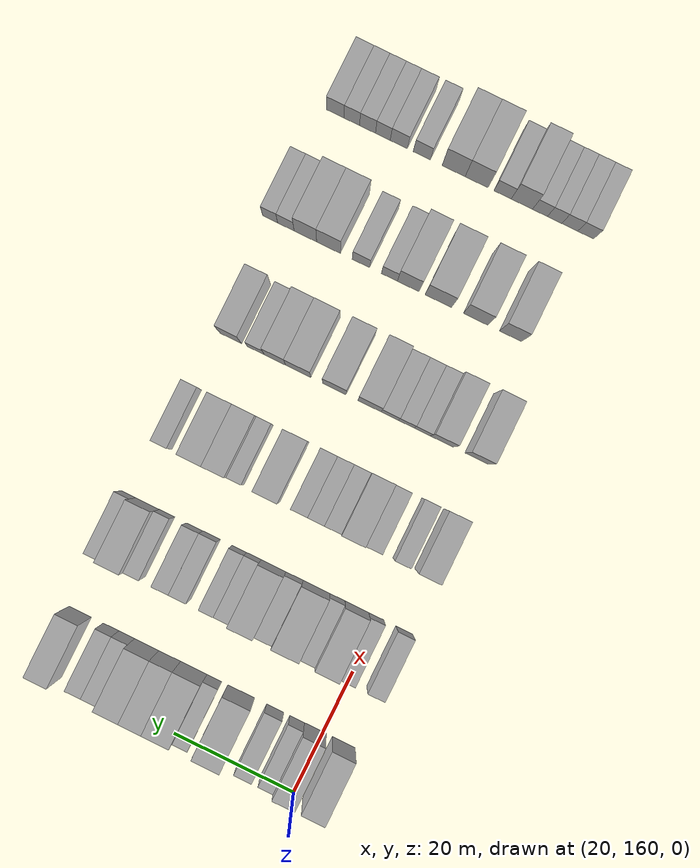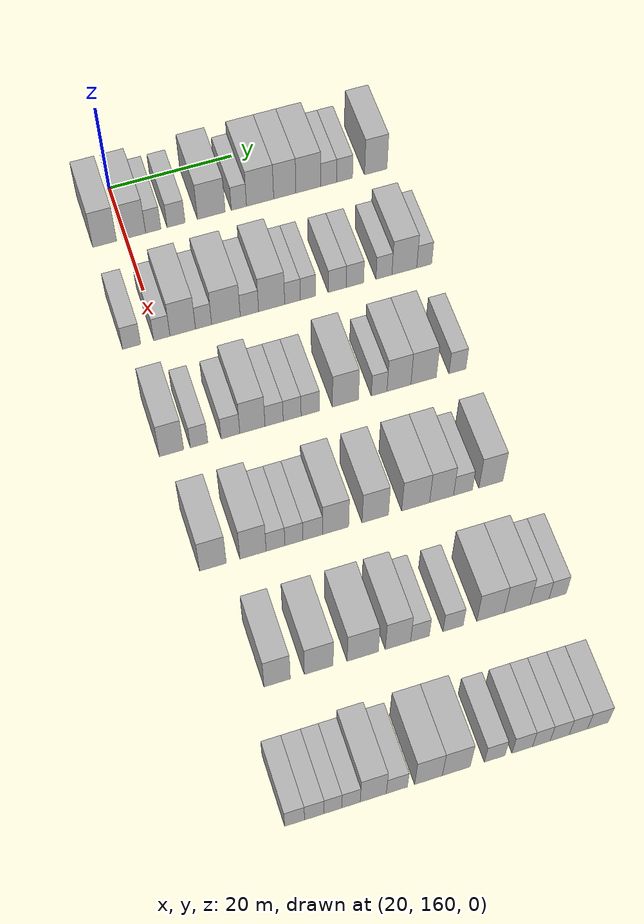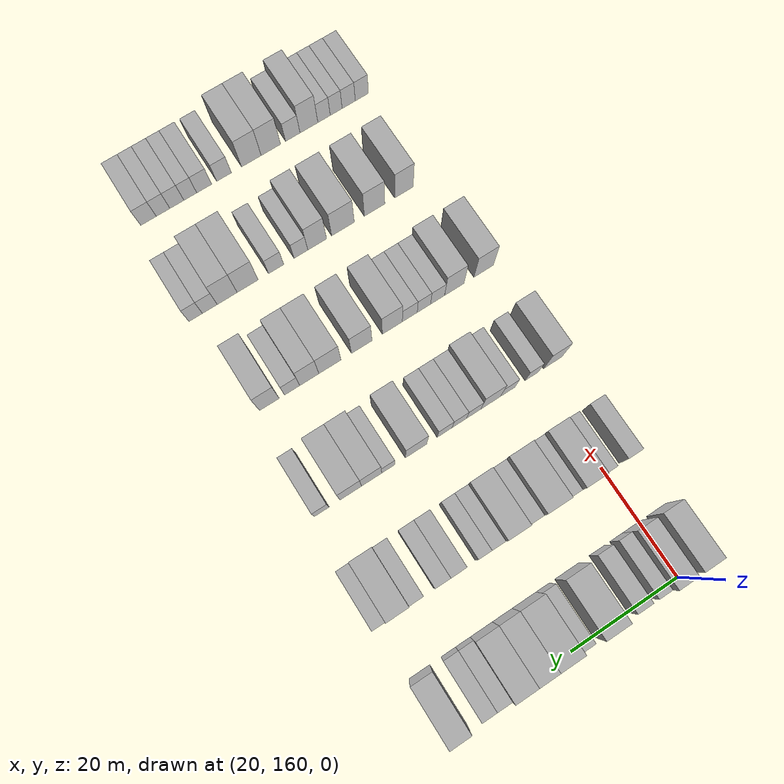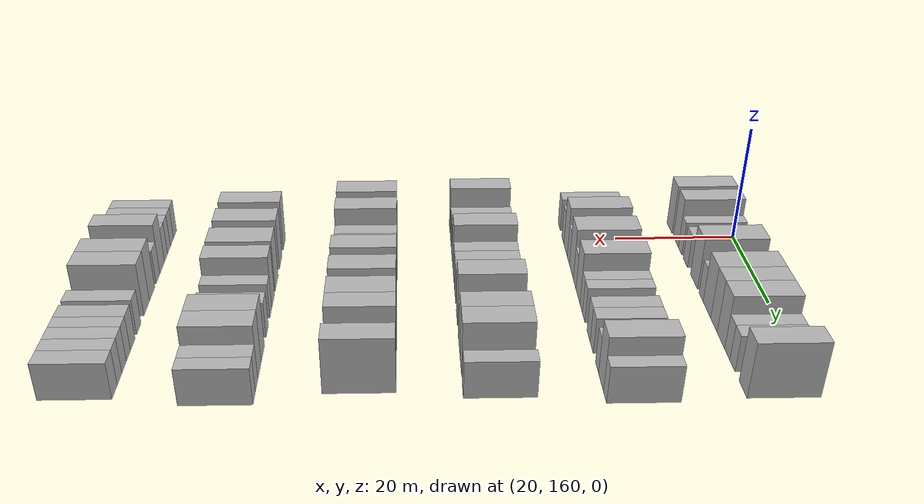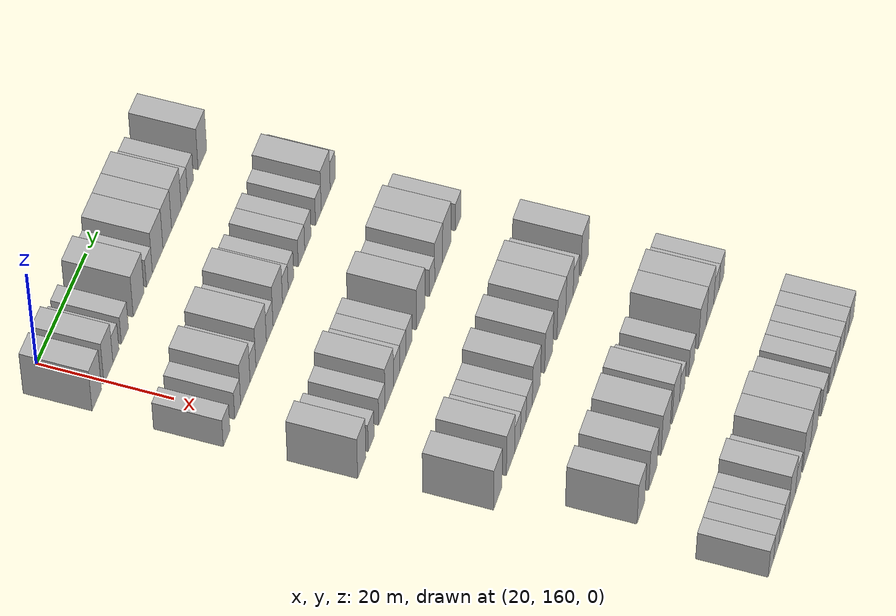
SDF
<sdf version="1.6">
 <world name="default">
  <model name="building_115">
   <static>1</static>
   <pose>25.0000 156.6173 0 0.000000 0.000000 0.000000</pose>
   <link name="link">
    <pose>0 0 4.50 0 0 0</pose>
    <collision name="collision"><geometry><box><size>10.0000 3.8027 9.0000</size></box></geometry></collision>
    <visual name="visual">
     <cast_shadows>0</cast_shadows>
     <geometry><box><size>10.0000 3.8027 9.0000</size></box></geometry>
     <material>
      <script>
       <uri>model://HANNAS_wall/materials/scripts</uri>
       <uri>model://HANNAS_wall/materials/textures</uri>
       <name>vrc/HANNAS_wall</name>
      </script>
     </material>
    </visual>
   </link>
  </model>
  <model name="building_116">
   <static>1</static>
   <pose>25.0000 161.3417 0 0.000000 0.000000 0.000000</pose>
   <link name="link">
    <pose>0 0 4.50 0 0 0</pose>
    <collision name="collision"><geometry><box><size>10.0000 3.6462 9.0000</size></box></geometry></collision>
    <visual name="visual">
     <cast_shadows>0</cast_shadows>
     <geometry><box><size>10.0000 3.6462 9.0000</size></box></geometry>
     <material>
      <script>
       <uri>model://HANNAS_wall/materials/scripts</uri>
       <uri>model://HANNAS_wall/materials/textures</uri>
       <name>vrc/HANNAS_wall</name>
      </script>
     </material>
    </visual>
   </link>
  </model>
  <model name="building_117">
   <static>1</static>
   <pose>25.0000 164.3866 0 0.000000 0.000000 0.000000</pose>
   <link name="link">
    <pose>0 0 3.00 0 0 0</pose>
    <collision name="collision"><geometry><box><size>10.0000 2.4435 6.0000</size></box></geometry></collision>
    <visual name="visual">
     <cast_shadows>0</cast_shadows>
     <geometry><box><size>10.0000 2.4435 6.0000</size></box></geometry>
     <material>
      <script>
       <uri>model://HANNAS_wall/materials/scripts</uri>
       <uri>model://HANNAS_wall/materials/textures</uri>
       <name>vrc/HANNAS_wall</name>
      </script>
     </material>
    </visual>
   </link>
  </model>
  <model name="building_118">
   <static>1</static>
   <pose>25.0000 168.0514 0 0.000000 0.000000 0.000000</pose>
   <link name="link">
    <pose>0 0 3.00 0 0 0</pose>
    <collision name="collision"><geometry><box><size>10.0000 2.8862 6.0000</size></box></geometry></collision>
    <visual name="visual">
     <cast_shadows>0</cast_shadows>
     <geometry><box><size>10.0000 2.8862 6.0000</size></box></geometry>
     <material>
      <script>
       <uri>model://HANNAS_wall/materials/scripts</uri>
       <uri>model://HANNAS_wall/materials/textures</uri>
       <name>vrc/HANNAS_wall</name>
      </script>
     </material>
    </visual>
   </link>
  </model>
  <model name="building_119">
   <static>1</static>
   <pose>25.0000 173.7410 0 0.000000 0.000000 0.000000</pose>
   <link name="link">
    <pose>0 0 4.50 0 0 0</pose>
    <collision name="collision"><geometry><box><size>10.0000 4.4930 9.0000</size></box></geometry></collision>
    <visual name="visual">
     <cast_shadows>0</cast_shadows>
     <geometry><box><size>10.0000 4.4930 9.0000</size></box></geometry>
     <material>
      <script>
       <uri>model://HANNAS_wall/materials/scripts</uri>
       <uri>model://HANNAS_wall/materials/textures</uri>
       <name>vrc/HANNAS_wall</name>
      </script>
     </material>
    </visual>
   </link>
  </model>
  <model name="building_120">
   <static>1</static>
   <pose>25.0000 178.2228 0 0.000000 0.000000 0.000000</pose>
   <link name="link">
    <pose>0 0 3.00 0 0 0</pose>
    <collision name="collision"><geometry><box><size>10.0000 2.4706 6.0000</size></box></geometry></collision>
    <visual name="visual">
     <cast_shadows>0</cast_shadows>
     <geometry><box><size>10.0000 2.4706 6.0000</size></box></geometry>
     <material>
      <script>
       <uri>model://HANNAS_wall/materials/scripts</uri>
       <uri>model://HANNAS_wall/materials/textures</uri>
       <name>vrc/HANNAS_wall</name>
      </script>
     </material>
    </visual>
   </link>
  </model>
  <model name="building_121">
   <static>1</static>
   <pose>25.0000 181.6790 0 0.000000 0.000000 0.000000</pose>
   <link name="link">
    <pose>0 0 4.50 0 0 0</pose>
    <collision name="collision"><geometry><box><size>10.0000 4.4417 9.0000</size></box></geometry></collision>
    <visual name="visual">
     <cast_shadows>0</cast_shadows>
     <geometry><box><size>10.0000 4.4417 9.0000</size></box></geometry>
     <material>
      <script>
       <uri>model://HANNAS_wall/materials/scripts</uri>
       <uri>model://HANNAS_wall/materials/textures</uri>
       <name>vrc/HANNAS_wall</name>
      </script>
     </material>
    </visual>
   </link>
  </model>
  <model name="building_122">
   <static>1</static>
   <pose>25.0000 185.7225 0 0.000000 0.000000 0.000000</pose>
   <link name="link">
    <pose>0 0 4.50 0 0 0</pose>
    <collision name="collision"><geometry><box><size>10.0000 3.6453 9.0000</size></box></geometry></collision>
    <visual name="visual">
     <cast_shadows>0</cast_shadows>
     <geometry><box><size>10.0000 3.6453 9.0000</size></box></geometry>
     <material>
      <script>
       <uri>model://HANNAS_wall/materials/scripts</uri>
       <uri>model://HANNAS_wall/materials/textures</uri>
       <name>vrc/HANNAS_wall</name>
      </script>
     </material>
    </visual>
   </link>
  </model>
  <model name="building_123">
   <static>1</static>
   <pose>25.0000 189.5799 0 0.000000 0.000000 0.000000</pose>
   <link name="link">
    <pose>0 0 4.50 0 0 0</pose>
    <collision name="collision"><geometry><box><size>10.0000 4.0696 9.0000</size></box></geometry></collision>
    <visual name="visual">
     <cast_shadows>0</cast_shadows>
     <geometry><box><size>10.0000 4.0696 9.0000</size></box></geometry>
     <material>
      <script>
       <uri>model://HANNAS_wall/materials/scripts</uri>
       <uri>model://HANNAS_wall/materials/textures</uri>
       <name>vrc/HANNAS_wall</name>
      </script>
     </material>
    </visual>
   </link>
  </model>
  <model name="building_124">
   <static>1</static>
   <pose>25.0000 192.9331 0 0.000000 0.000000 0.000000</pose>
   <link name="link">
    <pose>0 0 3.00 0 0 0</pose>
    <collision name="collision"><geometry><box><size>10.0000 2.6368 6.0000</size></box></geometry></collision>
    <visual name="visual">
     <cast_shadows>0</cast_shadows>
     <geometry><box><size>10.0000 2.6368 6.0000</size></box></geometry>
     <material>
      <script>
       <uri>model://HANNAS_wall/materials/scripts</uri>
       <uri>model://HANNAS_wall/materials/textures</uri>
       <name>vrc/HANNAS_wall</name>
      </script>
     </material>
    </visual>
   </link>
  </model>
  <model name="building_125">
   <static>1</static>
   <pose>25.0000 195.5694 0 0.000000 0.000000 0.000000</pose>
   <link name="link">
    <pose>0 0 3.00 0 0 0</pose>
    <collision name="collision"><geometry><box><size>10.0000 2.6356 6.0000</size></box></geometry></collision>
    <visual name="visual">
     <cast_shadows>0</cast_shadows>
     <geometry><box><size>10.0000 2.6356 6.0000</size></box></geometry>
     <material>
      <script>
       <uri>model://HANNAS_wall/materials/scripts</uri>
       <uri>model://HANNAS_wall/materials/textures</uri>
       <name>vrc/HANNAS_wall</name>
      </script>
     </material>
    </visual>
   </link>
  </model>
  <model name="building_126">
   <static>1</static>
   <pose>25.0000 200.7594 0 0.000000 0.000000 0.000000</pose>
   <link name="link">
    <pose>0 0 4.50 0 0 0</pose>
    <collision name="collision"><geometry><box><size>10.0000 3.7444 9.0000</size></box></geometry></collision>
    <visual name="visual">
     <cast_shadows>0</cast_shadows>
     <geometry><box><size>10.0000 3.7444 9.0000</size></box></geometry>
     <material>
      <script>
       <uri>model://HANNAS_wall/materials/scripts</uri>
       <uri>model://HANNAS_wall/materials/textures</uri>
       <name>vrc/HANNAS_wall</name>
      </script>
     </material>
    </visual>
   </link>
  </model>
  <model name="building_281">
   <static>1</static>
   <pose>44.0000 155.7806 0 0.000000 0.000000 0.000000</pose>
   <link name="link">
    <pose>0 0 3.00 0 0 0</pose>
    <collision name="collision"><geometry><box><size>10.0000 2.8152 6.0000</size></box></geometry></collision>
    <visual name="visual">
     <cast_shadows>0</cast_shadows>
     <geometry><box><size>10.0000 2.8152 6.0000</size></box></geometry>
     <material>
      <script>
       <uri>model://HANNAS_wall/materials/scripts</uri>
       <uri>model://HANNAS_wall/materials/textures</uri>
       <name>vrc/HANNAS_wall</name>
      </script>
     </material>
    </visual>
   </link>
  </model>
  <model name="building_282">
   <static>1</static>
   <pose>44.0000 160.4597 0 0.000000 0.000000 0.000000</pose>
   <link name="link">
    <pose>0 0 3.00 0 0 0</pose>
    <collision name="collision"><geometry><box><size>10.0000 2.5428 6.0000</size></box></geometry></collision>
    <visual name="visual">
     <cast_shadows>0</cast_shadows>
     <geometry><box><size>10.0000 2.5428 6.0000</size></box></geometry>
     <material>
      <script>
       <uri>model://HANNAS_wall/materials/scripts</uri>
       <uri>model://HANNAS_wall/materials/textures</uri>
       <name>vrc/HANNAS_wall</name>
      </script>
     </material>
    </visual>
   </link>
  </model>
  <model name="building_283">
   <static>1</static>
   <pose>44.0000 163.7193 0 0.000000 0.000000 0.000000</pose>
   <link name="link">
    <pose>0 0 4.50 0 0 0</pose>
    <collision name="collision"><geometry><box><size>10.0000 3.9764 9.0000</size></box></geometry></collision>
    <visual name="visual">
     <cast_shadows>0</cast_shadows>
     <geometry><box><size>10.0000 3.9764 9.0000</size></box></geometry>
     <material>
      <script>
       <uri>model://HANNAS_wall/materials/scripts</uri>
       <uri>model://HANNAS_wall/materials/textures</uri>
       <name>vrc/HANNAS_wall</name>
      </script>
     </material>
    </visual>
   </link>
  </model>
  <model name="building_284">
   <static>1</static>
   <pose>44.0000 166.9641 0 0.000000 0.000000 0.000000</pose>
   <link name="link">
    <pose>0 0 3.00 0 0 0</pose>
    <collision name="collision"><geometry><box><size>10.0000 2.5133 6.0000</size></box></geometry></collision>
    <visual name="visual">
     <cast_shadows>0</cast_shadows>
     <geometry><box><size>10.0000 2.5133 6.0000</size></box></geometry>
     <material>
      <script>
       <uri>model://HANNAS_wall/materials/scripts</uri>
       <uri>model://HANNAS_wall/materials/textures</uri>
       <name>vrc/HANNAS_wall</name>
      </script>
     </material>
    </visual>
   </link>
  </model>
  <model name="building_285">
   <static>1</static>
   <pose>44.0000 170.4692 0 0.000000 0.000000 0.000000</pose>
   <link name="link">
    <pose>0 0 4.50 0 0 0</pose>
    <collision name="collision"><geometry><box><size>10.0000 4.4968 9.0000</size></box></geometry></collision>
    <visual name="visual">
     <cast_shadows>0</cast_shadows>
     <geometry><box><size>10.0000 4.4968 9.0000</size></box></geometry>
     <material>
      <script>
       <uri>model://HANNAS_wall/materials/scripts</uri>
       <uri>model://HANNAS_wall/materials/textures</uri>
       <name>vrc/HANNAS_wall</name>
      </script>
     </material>
    </visual>
   </link>
  </model>
  <model name="building_286">
   <static>1</static>
   <pose>44.0000 174.1604 0 0.000000 0.000000 0.000000</pose>
   <link name="link">
    <pose>0 0 3.00 0 0 0</pose>
    <collision name="collision"><geometry><box><size>10.0000 2.8856 6.0000</size></box></geometry></collision>
    <visual name="visual">
     <cast_shadows>0</cast_shadows>
     <geometry><box><size>10.0000 2.8856 6.0000</size></box></geometry>
     <material>
      <script>
       <uri>model://HANNAS_wall/materials/scripts</uri>
       <uri>model://HANNAS_wall/materials/textures</uri>
       <name>vrc/HANNAS_wall</name>
      </script>
     </material>
    </visual>
   </link>
  </model>
  <model name="building_287">
   <static>1</static>
   <pose>44.0000 177.6640 0 0.000000 0.000000 0.000000</pose>
   <link name="link">
    <pose>0 0 4.50 0 0 0</pose>
    <collision name="collision"><geometry><box><size>10.0000 4.1216 9.0000</size></box></geometry></collision>
    <visual name="visual">
     <cast_shadows>0</cast_shadows>
     <geometry><box><size>10.0000 4.1216 9.0000</size></box></geometry>
     <material>
      <script>
       <uri>model://HANNAS_wall/materials/scripts</uri>
       <uri>model://HANNAS_wall/materials/textures</uri>
       <name>vrc/HANNAS_wall</name>
      </script>
     </material>
    </visual>
   </link>
  </model>
  <model name="building_288">
   <static>1</static>
   <pose>44.0000 180.9608 0 0.000000 0.000000 0.000000</pose>
   <link name="link">
    <pose>0 0 3.00 0 0 0</pose>
    <collision name="collision"><geometry><box><size>10.0000 2.4719 6.0000</size></box></geometry></collision>
    <visual name="visual">
     <cast_shadows>0</cast_shadows>
     <geometry><box><size>10.0000 2.4719 6.0000</size></box></geometry>
     <material>
      <script>
       <uri>model://HANNAS_wall/materials/scripts</uri>
       <uri>model://HANNAS_wall/materials/textures</uri>
       <name>vrc/HANNAS_wall</name>
      </script>
     </material>
    </visual>
   </link>
  </model>
  <model name="building_289">
   <static>1</static>
   <pose>44.0000 183.4170 0 0.000000 0.000000 0.000000</pose>
   <link name="link">
    <pose>0 0 3.00 0 0 0</pose>
    <collision name="collision"><geometry><box><size>10.0000 2.4405 6.0000</size></box></geometry></collision>
    <visual name="visual">
     <cast_shadows>0</cast_shadows>
     <geometry><box><size>10.0000 2.4405 6.0000</size></box></geometry>
     <material>
      <script>
       <uri>model://HANNAS_wall/materials/scripts</uri>
       <uri>model://HANNAS_wall/materials/textures</uri>
       <name>vrc/HANNAS_wall</name>
      </script>
     </material>
    </visual>
   </link>
  </model>
  <model name="building_290">
   <static>1</static>
   <pose>44.0000 188.0779 0 0.000000 0.000000 0.000000</pose>
   <link name="link">
    <pose>0 0 3.00 0 0 0</pose>
    <collision name="collision"><geometry><box><size>10.0000 2.8813 6.0000</size></box></geometry></collision>
    <visual name="visual">
     <cast_shadows>0</cast_shadows>
     <geometry><box><size>10.0000 2.8813 6.0000</size></box></geometry>
     <material>
      <script>
       <uri>model://HANNAS_wall/materials/scripts</uri>
       <uri>model://HANNAS_wall/materials/textures</uri>
       <name>vrc/HANNAS_wall</name>
      </script>
     </material>
    </visual>
   </link>
  </model>
  <model name="building_291">
   <static>1</static>
   <pose>44.0000 190.9140 0 0.000000 0.000000 0.000000</pose>
   <link name="link">
    <pose>0 0 3.00 0 0 0</pose>
    <collision name="collision"><geometry><box><size>10.0000 2.7908 6.0000</size></box></geometry></collision>
    <visual name="visual">
     <cast_shadows>0</cast_shadows>
     <geometry><box><size>10.0000 2.7908 6.0000</size></box></geometry>
     <material>
      <script>
       <uri>model://HANNAS_wall/materials/scripts</uri>
       <uri>model://HANNAS_wall/materials/textures</uri>
       <name>vrc/HANNAS_wall</name>
      </script>
     </material>
    </visual>
   </link>
  </model>
  <model name="building_292">
   <static>1</static>
   <pose>44.0000 195.5929 0 0.000000 0.000000 0.000000</pose>
   <link name="link">
    <pose>0 0 3.00 0 0 0</pose>
    <collision name="collision"><geometry><box><size>10.0000 2.5670 6.0000</size></box></geometry></collision>
    <visual name="visual">
     <cast_shadows>0</cast_shadows>
     <geometry><box><size>10.0000 2.5670 6.0000</size></box></geometry>
     <material>
      <script>
       <uri>model://HANNAS_wall/materials/scripts</uri>
       <uri>model://HANNAS_wall/materials/textures</uri>
       <name>vrc/HANNAS_wall</name>
      </script>
     </material>
    </visual>
   </link>
  </model>
  <model name="building_293">
   <static>1</static>
   <pose>44.0000 198.8872 0 0.000000 0.000000 0.000000</pose>
   <link name="link">
    <pose>0 0 4.50 0 0 0</pose>
    <collision name="collision"><geometry><box><size>10.0000 4.0216 9.0000</size></box></geometry></collision>
    <visual name="visual">
     <cast_shadows>0</cast_shadows>
     <geometry><box><size>10.0000 4.0216 9.0000</size></box></geometry>
     <material>
      <script>
       <uri>model://HANNAS_wall/materials/scripts</uri>
       <uri>model://HANNAS_wall/materials/textures</uri>
       <name>vrc/HANNAS_wall</name>
      </script>
     </material>
    </visual>
   </link>
  </model>
  <model name="building_294">
   <static>1</static>
   <pose>44.0000 202.1095 0 0.000000 0.000000 0.000000</pose>
   <link name="link">
    <pose>0 0 3.00 0 0 0</pose>
    <collision name="collision"><geometry><box><size>10.0000 2.4228 6.0000</size></box></geometry></collision>
    <visual name="visual">
     <cast_shadows>0</cast_shadows>
     <geometry><box><size>10.0000 2.4228 6.0000</size></box></geometry>
     <material>
      <script>
       <uri>model://HANNAS_wall/materials/scripts</uri>
       <uri>model://HANNAS_wall/materials/textures</uri>
       <name>vrc/HANNAS_wall</name>
      </script>
     </material>
    </visual>
   </link>
  </model>
  <model name="building_458">
   <static>1</static>
   <pose>63.0000 156.6104 0 0.000000 0.000000 0.000000</pose>
   <link name="link">
    <pose>0 0 4.50 0 0 0</pose>
    <collision name="collision"><geometry><box><size>10.0000 3.6429 9.0000</size></box></geometry></collision>
    <visual name="visual">
     <cast_shadows>0</cast_shadows>
     <geometry><box><size>10.0000 3.6429 9.0000</size></box></geometry>
     <material>
      <script>
       <uri>model://HANNAS_wall/materials/scripts</uri>
       <uri>model://HANNAS_wall/materials/textures</uri>
       <name>vrc/HANNAS_wall</name>
      </script>
     </material>
    </visual>
   </link>
  </model>
  <model name="building_459">
   <static>1</static>
   <pose>63.0000 160.7551 0 0.000000 0.000000 0.000000</pose>
   <link name="link">
    <pose>0 0 3.00 0 0 0</pose>
    <collision name="collision"><geometry><box><size>10.0000 2.6466 6.0000</size></box></geometry></collision>
    <visual name="visual">
     <cast_shadows>0</cast_shadows>
     <geometry><box><size>10.0000 2.6466 6.0000</size></box></geometry>
     <material>
      <script>
       <uri>model://HANNAS_wall/materials/scripts</uri>
       <uri>model://HANNAS_wall/materials/textures</uri>
       <name>vrc/HANNAS_wall</name>
      </script>
     </material>
    </visual>
   </link>
  </model>
  <model name="building_460">
   <static>1</static>
   <pose>63.0000 165.4972 0 0.000000 0.000000 0.000000</pose>
   <link name="link">
    <pose>0 0 3.00 0 0 0</pose>
    <collision name="collision"><geometry><box><size>10.0000 2.8376 6.0000</size></box></geometry></collision>
    <visual name="visual">
     <cast_shadows>0</cast_shadows>
     <geometry><box><size>10.0000 2.8376 6.0000</size></box></geometry>
     <material>
      <script>
       <uri>model://HANNAS_wall/materials/scripts</uri>
       <uri>model://HANNAS_wall/materials/textures</uri>
       <name>vrc/HANNAS_wall</name>
      </script>
     </material>
    </visual>
   </link>
  </model>
  <model name="building_461">
   <static>1</static>
   <pose>63.0000 168.8309 0 0.000000 0.000000 0.000000</pose>
   <link name="link">
    <pose>0 0 4.50 0 0 0</pose>
    <collision name="collision"><geometry><box><size>10.0000 3.8297 9.0000</size></box></geometry></collision>
    <visual name="visual">
     <cast_shadows>0</cast_shadows>
     <geometry><box><size>10.0000 3.8297 9.0000</size></box></geometry>
     <material>
      <script>
       <uri>model://HANNAS_wall/materials/scripts</uri>
       <uri>model://HANNAS_wall/materials/textures</uri>
       <name>vrc/HANNAS_wall</name>
      </script>
     </material>
    </visual>
   </link>
  </model>
  <model name="building_462">
   <static>1</static>
   <pose>63.0000 172.1347 0 0.000000 0.000000 0.000000</pose>
   <link name="link">
    <pose>0 0 3.00 0 0 0</pose>
    <collision name="collision"><geometry><box><size>10.0000 2.7781 6.0000</size></box></geometry></collision>
    <visual name="visual">
     <cast_shadows>0</cast_shadows>
     <geometry><box><size>10.0000 2.7781 6.0000</size></box></geometry>
     <material>
      <script>
       <uri>model://HANNAS_wall/materials/scripts</uri>
       <uri>model://HANNAS_wall/materials/textures</uri>
       <name>vrc/HANNAS_wall</name>
      </script>
     </material>
    </visual>
   </link>
  </model>
  <model name="building_463">
   <static>1</static>
   <pose>63.0000 174.8936 0 0.000000 0.000000 0.000000</pose>
   <link name="link">
    <pose>0 0 3.00 0 0 0</pose>
    <collision name="collision"><geometry><box><size>10.0000 2.7397 6.0000</size></box></geometry></collision>
    <visual name="visual">
     <cast_shadows>0</cast_shadows>
     <geometry><box><size>10.0000 2.7397 6.0000</size></box></geometry>
     <material>
      <script>
       <uri>model://HANNAS_wall/materials/scripts</uri>
       <uri>model://HANNAS_wall/materials/textures</uri>
       <name>vrc/HANNAS_wall</name>
      </script>
     </material>
    </visual>
   </link>
  </model>
  <model name="building_464">
   <static>1</static>
   <pose>63.0000 177.6654 0 0.000000 0.000000 0.000000</pose>
   <link name="link">
    <pose>0 0 3.00 0 0 0</pose>
    <collision name="collision"><geometry><box><size>10.0000 2.8038 6.0000</size></box></geometry></collision>
    <visual name="visual">
     <cast_shadows>0</cast_shadows>
     <geometry><box><size>10.0000 2.8038 6.0000</size></box></geometry>
     <material>
      <script>
       <uri>model://HANNAS_wall/materials/scripts</uri>
       <uri>model://HANNAS_wall/materials/textures</uri>
       <name>vrc/HANNAS_wall</name>
      </script>
     </material>
    </visual>
   </link>
  </model>
  <model name="building_465">
   <static>1</static>
   <pose>63.0000 183.0820 0 0.000000 0.000000 0.000000</pose>
   <link name="link">
    <pose>0 0 4.50 0 0 0</pose>
    <collision name="collision"><geometry><box><size>10.0000 4.0295 9.0000</size></box></geometry></collision>
    <visual name="visual">
     <cast_shadows>0</cast_shadows>
     <geometry><box><size>10.0000 4.0295 9.0000</size></box></geometry>
     <material>
      <script>
       <uri>model://HANNAS_wall/materials/scripts</uri>
       <uri>model://HANNAS_wall/materials/textures</uri>
       <name>vrc/HANNAS_wall</name>
      </script>
     </material>
    </visual>
   </link>
  </model>
  <model name="building_466">
   <static>1</static>
   <pose>63.0000 188.3122 0 0.000000 0.000000 0.000000</pose>
   <link name="link">
    <pose>0 0 3.00 0 0 0</pose>
    <collision name="collision"><geometry><box><size>10.0000 2.4308 6.0000</size></box></geometry></collision>
    <visual name="visual">
     <cast_shadows>0</cast_shadows>
     <geometry><box><size>10.0000 2.4308 6.0000</size></box></geometry>
     <material>
      <script>
       <uri>model://HANNAS_wall/materials/scripts</uri>
       <uri>model://HANNAS_wall/materials/textures</uri>
       <name>vrc/HANNAS_wall</name>
      </script>
     </material>
    </visual>
   </link>
  </model>
  <model name="building_467">
   <static>1</static>
   <pose>63.0000 191.3935 0 0.000000 0.000000 0.000000</pose>
   <link name="link">
    <pose>0 0 4.50 0 0 0</pose>
    <collision name="collision"><geometry><box><size>10.0000 3.7319 9.0000</size></box></geometry></collision>
    <visual name="visual">
     <cast_shadows>0</cast_shadows>
     <geometry><box><size>10.0000 3.7319 9.0000</size></box></geometry>
     <material>
      <script>
       <uri>model://HANNAS_wall/materials/scripts</uri>
       <uri>model://HANNAS_wall/materials/textures</uri>
       <name>vrc/HANNAS_wall</name>
      </script>
     </material>
    </visual>
   </link>
  </model>
  <model name="building_468">
   <static>1</static>
   <pose>63.0000 195.2472 0 0.000000 0.000000 0.000000</pose>
   <link name="link">
    <pose>0 0 4.50 0 0 0</pose>
    <collision name="collision"><geometry><box><size>10.0000 3.9755 9.0000</size></box></geometry></collision>
    <visual name="visual">
     <cast_shadows>0</cast_shadows>
     <geometry><box><size>10.0000 3.9755 9.0000</size></box></geometry>
     <material>
      <script>
       <uri>model://HANNAS_wall/materials/scripts</uri>
       <uri>model://HANNAS_wall/materials/textures</uri>
       <name>vrc/HANNAS_wall</name>
      </script>
     </material>
    </visual>
   </link>
  </model>
  <model name="building_469">
   <static>1</static>
   <pose>63.0000 200.5642 0 0.000000 0.000000 0.000000</pose>
   <link name="link">
    <pose>0 0 3.00 0 0 0</pose>
    <collision name="collision"><geometry><box><size>10.0000 2.6586 6.0000</size></box></geometry></collision>
    <visual name="visual">
     <cast_shadows>0</cast_shadows>
     <geometry><box><size>10.0000 2.6586 6.0000</size></box></geometry>
     <material>
      <script>
       <uri>model://HANNAS_wall/materials/scripts</uri>
       <uri>model://HANNAS_wall/materials/textures</uri>
       <name>vrc/HANNAS_wall</name>
      </script>
     </material>
    </visual>
   </link>
  </model>
  <model name="building_639">
   <static>1</static>
   <pose>82.0000 157.2568 0 0.000000 0.000000 0.000000</pose>
   <link name="link">
    <pose>0 0 4.50 0 0 0</pose>
    <collision name="collision"><geometry><box><size>10.0000 3.8921 9.0000</size></box></geometry></collision>
    <visual name="visual">
     <cast_shadows>0</cast_shadows>
     <geometry><box><size>10.0000 3.8921 9.0000</size></box></geometry>
     <material>
      <script>
       <uri>model://HANNAS_wall/materials/scripts</uri>
       <uri>model://HANNAS_wall/materials/textures</uri>
       <name>vrc/HANNAS_wall</name>
      </script>
     </material>
    </visual>
   </link>
  </model>
  <model name="building_640">
   <static>1</static>
   <pose>82.0000 163.1241 0 0.000000 0.000000 0.000000</pose>
   <link name="link">
    <pose>0 0 4.50 0 0 0</pose>
    <collision name="collision"><geometry><box><size>10.0000 3.8425 9.0000</size></box></geometry></collision>
    <visual name="visual">
     <cast_shadows>0</cast_shadows>
     <geometry><box><size>10.0000 3.8425 9.0000</size></box></geometry>
     <material>
      <script>
       <uri>model://HANNAS_wall/materials/scripts</uri>
       <uri>model://HANNAS_wall/materials/textures</uri>
       <name>vrc/HANNAS_wall</name>
      </script>
     </material>
    </visual>
   </link>
  </model>
  <model name="building_641">
   <static>1</static>
   <pose>82.0000 166.4268 0 0.000000 0.000000 0.000000</pose>
   <link name="link">
    <pose>0 0 3.00 0 0 0</pose>
    <collision name="collision"><geometry><box><size>10.0000 2.7628 6.0000</size></box></geometry></collision>
    <visual name="visual">
     <cast_shadows>0</cast_shadows>
     <geometry><box><size>10.0000 2.7628 6.0000</size></box></geometry>
     <material>
      <script>
       <uri>model://HANNAS_wall/materials/scripts</uri>
       <uri>model://HANNAS_wall/materials/textures</uri>
       <name>vrc/HANNAS_wall</name>
      </script>
     </material>
    </visual>
   </link>
  </model>
  <model name="building_642">
   <static>1</static>
   <pose>82.0000 169.1230 0 0.000000 0.000000 0.000000</pose>
   <link name="link">
    <pose>0 0 3.00 0 0 0</pose>
    <collision name="collision"><geometry><box><size>10.0000 2.6296 6.0000</size></box></geometry></collision>
    <visual name="visual">
     <cast_shadows>0</cast_shadows>
     <geometry><box><size>10.0000 2.6296 6.0000</size></box></geometry>
     <material>
      <script>
       <uri>model://HANNAS_wall/materials/scripts</uri>
       <uri>model://HANNAS_wall/materials/textures</uri>
       <name>vrc/HANNAS_wall</name>
      </script>
     </material>
    </visual>
   </link>
  </model>
  <model name="building_643">
   <static>1</static>
   <pose>82.0000 171.8978 0 0.000000 0.000000 0.000000</pose>
   <link name="link">
    <pose>0 0 3.00 0 0 0</pose>
    <collision name="collision"><geometry><box><size>10.0000 2.9200 6.0000</size></box></geometry></collision>
    <visual name="visual">
     <cast_shadows>0</cast_shadows>
     <geometry><box><size>10.0000 2.9200 6.0000</size></box></geometry>
     <material>
      <script>
       <uri>model://HANNAS_wall/materials/scripts</uri>
       <uri>model://HANNAS_wall/materials/textures</uri>
       <name>vrc/HANNAS_wall</name>
      </script>
     </material>
    </visual>
   </link>
  </model>
  <model name="building_644">
   <static>1</static>
   <pose>82.0000 175.3001 0 0.000000 0.000000 0.000000</pose>
   <link name="link">
    <pose>0 0 4.50 0 0 0</pose>
    <collision name="collision"><geometry><box><size>10.0000 3.8847 9.0000</size></box></geometry></collision>
    <visual name="visual">
     <cast_shadows>0</cast_shadows>
     <geometry><box><size>10.0000 3.8847 9.0000</size></box></geometry>
     <material>
      <script>
       <uri>model://HANNAS_wall/materials/scripts</uri>
       <uri>model://HANNAS_wall/materials/textures</uri>
       <name>vrc/HANNAS_wall</name>
      </script>
     </material>
    </visual>
   </link>
  </model>
  <model name="building_645">
   <static>1</static>
   <pose>82.0000 181.2150 0 0.000000 0.000000 0.000000</pose>
   <link name="link">
    <pose>0 0 4.50 0 0 0</pose>
    <collision name="collision"><geometry><box><size>10.0000 3.9451 9.0000</size></box></geometry></collision>
    <visual name="visual">
     <cast_shadows>0</cast_shadows>
     <geometry><box><size>10.0000 3.9451 9.0000</size></box></geometry>
     <material>
      <script>
       <uri>model://HANNAS_wall/materials/scripts</uri>
       <uri>model://HANNAS_wall/materials/textures</uri>
       <name>vrc/HANNAS_wall</name>
      </script>
     </material>
    </visual>
   </link>
  </model>
  <model name="building_646">
   <static>1</static>
   <pose>82.0000 187.2936 0 0.000000 0.000000 0.000000</pose>
   <link name="link">
    <pose>0 0 4.50 0 0 0</pose>
    <collision name="collision"><geometry><box><size>10.0000 4.2121 9.0000</size></box></geometry></collision>
    <visual name="visual">
     <cast_shadows>0</cast_shadows>
     <geometry><box><size>10.0000 4.2121 9.0000</size></box></geometry>
     <material>
      <script>
       <uri>model://HANNAS_wall/materials/scripts</uri>
       <uri>model://HANNAS_wall/materials/textures</uri>
       <name>vrc/HANNAS_wall</name>
      </script>
     </material>
    </visual>
   </link>
  </model>
  <model name="building_647">
   <static>1</static>
   <pose>82.0000 191.2122 0 0.000000 0.000000 0.000000</pose>
   <link name="link">
    <pose>0 0 4.50 0 0 0</pose>
    <collision name="collision"><geometry><box><size>10.0000 3.6250 9.0000</size></box></geometry></collision>
    <visual name="visual">
     <cast_shadows>0</cast_shadows>
     <geometry><box><size>10.0000 3.6250 9.0000</size></box></geometry>
     <material>
      <script>
       <uri>model://HANNAS_wall/materials/scripts</uri>
       <uri>model://HANNAS_wall/materials/textures</uri>
       <name>vrc/HANNAS_wall</name>
      </script>
     </material>
    </visual>
   </link>
  </model>
  <model name="building_648">
   <static>1</static>
   <pose>82.0000 194.4546 0 0.000000 0.000000 0.000000</pose>
   <link name="link">
    <pose>0 0 3.00 0 0 0</pose>
    <collision name="collision"><geometry><box><size>10.0000 2.8598 6.0000</size></box></geometry></collision>
    <visual name="visual">
     <cast_shadows>0</cast_shadows>
     <geometry><box><size>10.0000 2.8598 6.0000</size></box></geometry>
     <material>
      <script>
       <uri>model://HANNAS_wall/materials/scripts</uri>
       <uri>model://HANNAS_wall/materials/textures</uri>
       <name>vrc/HANNAS_wall</name>
      </script>
     </material>
    </visual>
   </link>
  </model>
  <model name="building_649">
   <static>1</static>
   <pose>82.0000 198.7152 0 0.000000 0.000000 0.000000</pose>
   <link name="link">
    <pose>0 0 4.50 0 0 0</pose>
    <collision name="collision"><geometry><box><size>10.0000 3.6614 9.0000</size></box></geometry></collision>
    <visual name="visual">
     <cast_shadows>0</cast_shadows>
     <geometry><box><size>10.0000 3.6614 9.0000</size></box></geometry>
     <material>
      <script>
       <uri>model://HANNAS_wall/materials/scripts</uri>
       <uri>model://HANNAS_wall/materials/textures</uri>
       <name>vrc/HANNAS_wall</name>
      </script>
     </material>
    </visual>
   </link>
  </model>
  <model name="building_804">
   <static>1</static>
   <pose>101.0000 160.7177 0 0.000000 0.000000 0.000000</pose>
   <link name="link">
    <pose>0 0 4.50 0 0 0</pose>
    <collision name="collision"><geometry><box><size>10.0000 3.7191 9.0000</size></box></geometry></collision>
    <visual name="visual">
     <cast_shadows>0</cast_shadows>
     <geometry><box><size>10.0000 3.7191 9.0000</size></box></geometry>
     <material>
      <script>
       <uri>model://HANNAS_wall/materials/scripts</uri>
       <uri>model://HANNAS_wall/materials/textures</uri>
       <name>vrc/HANNAS_wall</name>
      </script>
     </material>
    </visual>
   </link>
  </model>
  <model name="building_805">
   <static>1</static>
   <pose>101.0000 166.6296 0 0.000000 0.000000 0.000000</pose>
   <link name="link">
    <pose>0 0 4.50 0 0 0</pose>
    <collision name="collision"><geometry><box><size>10.0000 4.1046 9.0000</size></box></geometry></collision>
    <visual name="visual">
     <cast_shadows>0</cast_shadows>
     <geometry><box><size>10.0000 4.1046 9.0000</size></box></geometry>
     <material>
      <script>
       <uri>model://HANNAS_wall/materials/scripts</uri>
       <uri>model://HANNAS_wall/materials/textures</uri>
       <name>vrc/HANNAS_wall</name>
      </script>
     </material>
    </visual>
   </link>
  </model>
  <model name="building_806">
   <static>1</static>
   <pose>101.0000 172.9268 0 0.000000 0.000000 0.000000</pose>
   <link name="link">
    <pose>0 0 4.50 0 0 0</pose>
    <collision name="collision"><geometry><box><size>10.0000 4.4897 9.0000</size></box></geometry></collision>
    <visual name="visual">
     <cast_shadows>0</cast_shadows>
     <geometry><box><size>10.0000 4.4897 9.0000</size></box></geometry>
     <material>
      <script>
       <uri>model://HANNAS_wall/materials/scripts</uri>
       <uri>model://HANNAS_wall/materials/textures</uri>
       <name>vrc/HANNAS_wall</name>
      </script>
     </material>
    </visual>
   </link>
  </model>
  <model name="building_807">
   <static>1</static>
   <pose>101.0000 178.0083 0 0.000000 0.000000 0.000000</pose>
   <link name="link">
    <pose>0 0 4.50 0 0 0</pose>
    <collision name="collision"><geometry><box><size>10.0000 3.6734 9.0000</size></box></geometry></collision>
    <visual name="visual">
     <cast_shadows>0</cast_shadows>
     <geometry><box><size>10.0000 3.6734 9.0000</size></box></geometry>
     <material>
      <script>
       <uri>model://HANNAS_wall/materials/scripts</uri>
       <uri>model://HANNAS_wall/materials/textures</uri>
       <name>vrc/HANNAS_wall</name>
      </script>
     </material>
    </visual>
   </link>
  </model>
  <model name="building_808">
   <static>1</static>
   <pose>101.0000 181.1979 0 0.000000 0.000000 0.000000</pose>
   <link name="link">
    <pose>0 0 3.00 0 0 0</pose>
    <collision name="collision"><geometry><box><size>10.0000 2.7060 6.0000</size></box></geometry></collision>
    <visual name="visual">
     <cast_shadows>0</cast_shadows>
     <geometry><box><size>10.0000 2.7060 6.0000</size></box></geometry>
     <material>
      <script>
       <uri>model://HANNAS_wall/materials/scripts</uri>
       <uri>model://HANNAS_wall/materials/textures</uri>
       <name>vrc/HANNAS_wall</name>
      </script>
     </material>
    </visual>
   </link>
  </model>
  <model name="building_809">
   <static>1</static>
   <pose>101.0000 186.0264 0 0.000000 0.000000 0.000000</pose>
   <link name="link">
    <pose>0 0 3.00 0 0 0</pose>
    <collision name="collision"><geometry><box><size>10.0000 2.9511 6.0000</size></box></geometry></collision>
    <visual name="visual">
     <cast_shadows>0</cast_shadows>
     <geometry><box><size>10.0000 2.9511 6.0000</size></box></geometry>
     <material>
      <script>
       <uri>model://HANNAS_wall/materials/scripts</uri>
       <uri>model://HANNAS_wall/materials/textures</uri>
       <name>vrc/HANNAS_wall</name>
      </script>
     </material>
    </visual>
   </link>
  </model>
  <model name="building_810">
   <static>1</static>
   <pose>101.0000 191.5177 0 0.000000 0.000000 0.000000</pose>
   <link name="link">
    <pose>0 0 4.50 0 0 0</pose>
    <collision name="collision"><geometry><box><size>10.0000 4.0315 9.0000</size></box></geometry></collision>
    <visual name="visual">
     <cast_shadows>0</cast_shadows>
     <geometry><box><size>10.0000 4.0315 9.0000</size></box></geometry>
     <material>
      <script>
       <uri>model://HANNAS_wall/materials/scripts</uri>
       <uri>model://HANNAS_wall/materials/textures</uri>
       <name>vrc/HANNAS_wall</name>
      </script>
     </material>
    </visual>
   </link>
  </model>
  <model name="building_811">
   <static>1</static>
   <pose>101.0000 195.4424 0 0.000000 0.000000 0.000000</pose>
   <link name="link">
    <pose>0 0 4.50 0 0 0</pose>
    <collision name="collision"><geometry><box><size>10.0000 3.8178 9.0000</size></box></geometry></collision>
    <visual name="visual">
     <cast_shadows>0</cast_shadows>
     <geometry><box><size>10.0000 3.8178 9.0000</size></box></geometry>
     <material>
      <script>
       <uri>model://HANNAS_wall/materials/scripts</uri>
       <uri>model://HANNAS_wall/materials/textures</uri>
       <name>vrc/HANNAS_wall</name>
      </script>
     </material>
    </visual>
   </link>
  </model>
  <model name="building_812">
   <static>1</static>
   <pose>101.0000 198.7517 0 0.000000 0.000000 0.000000</pose>
   <link name="link">
    <pose>0 0 3.00 0 0 0</pose>
    <collision name="collision"><geometry><box><size>10.0000 2.8010 6.0000</size></box></geometry></collision>
    <visual name="visual">
     <cast_shadows>0</cast_shadows>
     <geometry><box><size>10.0000 2.8010 6.0000</size></box></geometry>
     <material>
      <script>
       <uri>model://HANNAS_wall/materials/scripts</uri>
       <uri>model://HANNAS_wall/materials/textures</uri>
       <name>vrc/HANNAS_wall</name>
      </script>
     </material>
    </visual>
   </link>
  </model>
  <model name="building_813">
   <static>1</static>
   <pose>101.0000 201.4242 0 0.000000 0.000000 0.000000</pose>
   <link name="link">
    <pose>0 0 3.00 0 0 0</pose>
    <collision name="collision"><geometry><box><size>10.0000 2.5440 6.0000</size></box></geometry></collision>
    <visual name="visual">
     <cast_shadows>0</cast_shadows>
     <geometry><box><size>10.0000 2.5440 6.0000</size></box></geometry>
     <material>
      <script>
       <uri>model://HANNAS_wall/materials/scripts</uri>
       <uri>model://HANNAS_wall/materials/textures</uri>
       <name>vrc/HANNAS_wall</name>
      </script>
     </material>
    </visual>
   </link>
  </model>
  <model name="building_974">
   <static>1</static>
   <pose>120.0000 157.1579 0 0.000000 0.000000 0.000000</pose>
   <link name="link">
    <pose>0 0 3.00 0 0 0</pose>
    <collision name="collision"><geometry><box><size>10.0000 2.7095 6.0000</size></box></geometry></collision>
    <visual name="visual">
     <cast_shadows>0</cast_shadows>
     <geometry><box><size>10.0000 2.7095 6.0000</size></box></geometry>
     <material>
      <script>
       <uri>model://HANNAS_wall/materials/scripts</uri>
       <uri>model://HANNAS_wall/materials/textures</uri>
       <name>vrc/HANNAS_wall</name>
      </script>
     </material>
    </visual>
   </link>
  </model>
  <model name="building_975">
   <static>1</static>
   <pose>120.0000 159.8587 0 0.000000 0.000000 0.000000</pose>
   <link name="link">
    <pose>0 0 3.00 0 0 0</pose>
    <collision name="collision"><geometry><box><size>10.0000 2.6922 6.0000</size></box></geometry></collision>
    <visual name="visual">
     <cast_shadows>0</cast_shadows>
     <geometry><box><size>10.0000 2.6922 6.0000</size></box></geometry>
     <material>
      <script>
       <uri>model://HANNAS_wall/materials/scripts</uri>
       <uri>model://HANNAS_wall/materials/textures</uri>
       <name>vrc/HANNAS_wall</name>
      </script>
     </material>
    </visual>
   </link>
  </model>
  <model name="building_976">
   <static>1</static>
   <pose>120.0000 162.4210 0 0.000000 0.000000 0.000000</pose>
   <link name="link">
    <pose>0 0 3.00 0 0 0</pose>
    <collision name="collision"><geometry><box><size>10.0000 2.4324 6.0000</size></box></geometry></collision>
    <visual name="visual">
     <cast_shadows>0</cast_shadows>
     <geometry><box><size>10.0000 2.4324 6.0000</size></box></geometry>
     <material>
      <script>
       <uri>model://HANNAS_wall/materials/scripts</uri>
       <uri>model://HANNAS_wall/materials/textures</uri>
       <name>vrc/HANNAS_wall</name>
      </script>
     </material>
    </visual>
   </link>
  </model>
  <model name="building_977">
   <static>1</static>
   <pose>120.0000 164.9005 0 0.000000 0.000000 0.000000</pose>
   <link name="link">
    <pose>0 0 3.00 0 0 0</pose>
    <collision name="collision"><geometry><box><size>10.0000 2.5266 6.0000</size></box></geometry></collision>
    <visual name="visual">
     <cast_shadows>0</cast_shadows>
     <geometry><box><size>10.0000 2.5266 6.0000</size></box></geometry>
     <material>
      <script>
       <uri>model://HANNAS_wall/materials/scripts</uri>
       <uri>model://HANNAS_wall/materials/textures</uri>
       <name>vrc/HANNAS_wall</name>
      </script>
     </material>
    </visual>
   </link>
  </model>
  <model name="building_978">
   <static>1</static>
   <pose>120.0000 167.9722 0 0.000000 0.000000 0.000000</pose>
   <link name="link">
    <pose>0 0 4.50 0 0 0</pose>
    <collision name="collision"><geometry><box><size>10.0000 3.6169 9.0000</size></box></geometry></collision>
    <visual name="visual">
     <cast_shadows>0</cast_shadows>
     <geometry><box><size>10.0000 3.6169 9.0000</size></box></geometry>
     <material>
      <script>
       <uri>model://HANNAS_wall/materials/scripts</uri>
       <uri>model://HANNAS_wall/materials/textures</uri>
       <name>vrc/HANNAS_wall</name>
      </script>
     </material>
    </visual>
   </link>
  </model>
  <model name="building_979">
   <static>1</static>
   <pose>120.0000 171.2458 0 0.000000 0.000000 0.000000</pose>
   <link name="link">
    <pose>0 0 3.00 0 0 0</pose>
    <collision name="collision"><geometry><box><size>10.0000 2.9303 6.0000</size></box></geometry></collision>
    <visual name="visual">
     <cast_shadows>0</cast_shadows>
     <geometry><box><size>10.0000 2.9303 6.0000</size></box></geometry>
     <material>
      <script>
       <uri>model://HANNAS_wall/materials/scripts</uri>
       <uri>model://HANNAS_wall/materials/textures</uri>
       <name>vrc/HANNAS_wall</name>
      </script>
     </material>
    </visual>
   </link>
  </model>
  <model name="building_980">
   <static>1</static>
   <pose>120.0000 175.6527 0 0.000000 0.000000 0.000000</pose>
   <link name="link">
    <pose>0 0 4.50 0 0 0</pose>
    <collision name="collision"><geometry><box><size>10.0000 3.8834 9.0000</size></box></geometry></collision>
    <visual name="visual">
     <cast_shadows>0</cast_shadows>
     <geometry><box><size>10.0000 3.8834 9.0000</size></box></geometry>
     <material>
      <script>
       <uri>model://HANNAS_wall/materials/scripts</uri>
       <uri>model://HANNAS_wall/materials/textures</uri>
       <name>vrc/HANNAS_wall</name>
      </script>
     </material>
    </visual>
   </link>
  </model>
  <model name="building_981">
   <static>1</static>
   <pose>120.0000 179.5498 0 0.000000 0.000000 0.000000</pose>
   <link name="link">
    <pose>0 0 4.50 0 0 0</pose>
    <collision name="collision"><geometry><box><size>10.0000 3.9110 9.0000</size></box></geometry></collision>
    <visual name="visual">
     <cast_shadows>0</cast_shadows>
     <geometry><box><size>10.0000 3.9110 9.0000</size></box></geometry>
     <material>
      <script>
       <uri>model://HANNAS_wall/materials/scripts</uri>
       <uri>model://HANNAS_wall/materials/textures</uri>
       <name>vrc/HANNAS_wall</name>
      </script>
     </material>
    </visual>
   </link>
  </model>
  <model name="building_982">
   <static>1</static>
   <pose>120.0000 184.9584 0 0.000000 0.000000 0.000000</pose>
   <link name="link">
    <pose>0 0 3.00 0 0 0</pose>
    <collision name="collision"><geometry><box><size>10.0000 2.9061 6.0000</size></box></geometry></collision>
    <visual name="visual">
     <cast_shadows>0</cast_shadows>
     <geometry><box><size>10.0000 2.9061 6.0000</size></box></geometry>
     <material>
      <script>
       <uri>model://HANNAS_wall/materials/scripts</uri>
       <uri>model://HANNAS_wall/materials/textures</uri>
       <name>vrc/HANNAS_wall</name>
      </script>
     </material>
    </visual>
   </link>
  </model>
  <model name="building_983">
   <static>1</static>
   <pose>120.0000 188.8711 0 0.000000 0.000000 0.000000</pose>
   <link name="link">
    <pose>0 0 3.00 0 0 0</pose>
    <collision name="collision"><geometry><box><size>10.0000 2.9194 6.0000</size></box></geometry></collision>
    <visual name="visual">
     <cast_shadows>0</cast_shadows>
     <geometry><box><size>10.0000 2.9194 6.0000</size></box></geometry>
     <material>
      <script>
       <uri>model://HANNAS_wall/materials/scripts</uri>
       <uri>model://HANNAS_wall/materials/textures</uri>
       <name>vrc/HANNAS_wall</name>
      </script>
     </material>
    </visual>
   </link>
  </model>
  <model name="building_984">
   <static>1</static>
   <pose>120.0000 191.5861 0 0.000000 0.000000 0.000000</pose>
   <link name="link">
    <pose>0 0 3.00 0 0 0</pose>
    <collision name="collision"><geometry><box><size>10.0000 2.5106 6.0000</size></box></geometry></collision>
    <visual name="visual">
     <cast_shadows>0</cast_shadows>
     <geometry><box><size>10.0000 2.5106 6.0000</size></box></geometry>
     <material>
      <script>
       <uri>model://HANNAS_wall/materials/scripts</uri>
       <uri>model://HANNAS_wall/materials/textures</uri>
       <name>vrc/HANNAS_wall</name>
      </script>
     </material>
    </visual>
   </link>
  </model>
  <model name="building_985">
   <static>1</static>
   <pose>120.0000 194.1962 0 0.000000 0.000000 0.000000</pose>
   <link name="link">
    <pose>0 0 3.00 0 0 0</pose>
    <collision name="collision"><geometry><box><size>10.0000 2.7095 6.0000</size></box></geometry></collision>
    <visual name="visual">
     <cast_shadows>0</cast_shadows>
     <geometry><box><size>10.0000 2.7095 6.0000</size></box></geometry>
     <material>
      <script>
       <uri>model://HANNAS_wall/materials/scripts</uri>
       <uri>model://HANNAS_wall/materials/textures</uri>
       <name>vrc/HANNAS_wall</name>
      </script>
     </material>
    </visual>
   </link>
  </model>
  <model name="building_986">
   <static>1</static>
   <pose>120.0000 196.8713 0 0.000000 0.000000 0.000000</pose>
   <link name="link">
    <pose>0 0 3.00 0 0 0</pose>
    <collision name="collision"><geometry><box><size>10.0000 2.6408 6.0000</size></box></geometry></collision>
    <visual name="visual">
     <cast_shadows>0</cast_shadows>
     <geometry><box><size>10.0000 2.6408 6.0000</size></box></geometry>
     <material>
      <script>
       <uri>model://HANNAS_wall/materials/scripts</uri>
       <uri>model://HANNAS_wall/materials/textures</uri>
       <name>vrc/HANNAS_wall</name>
      </script>
     </material>
    </visual>
   </link>
  </model>
  <model name="building_987">
   <static>1</static>
   <pose>120.0000 199.6875 0 0.000000 0.000000 0.000000</pose>
   <link name="link">
    <pose>0 0 3.00 0 0 0</pose>
    <collision name="collision"><geometry><box><size>10.0000 2.9915 6.0000</size></box></geometry></collision>
    <visual name="visual">
     <cast_shadows>0</cast_shadows>
     <geometry><box><size>10.0000 2.9915 6.0000</size></box></geometry>
     <material>
      <script>
       <uri>model://HANNAS_wall/materials/scripts</uri>
       <uri>model://HANNAS_wall/materials/textures</uri>
       <name>vrc/HANNAS_wall</name>
      </script>
     </material>
    </visual>
   </link>
  </model>
 </world>
</sdf>
